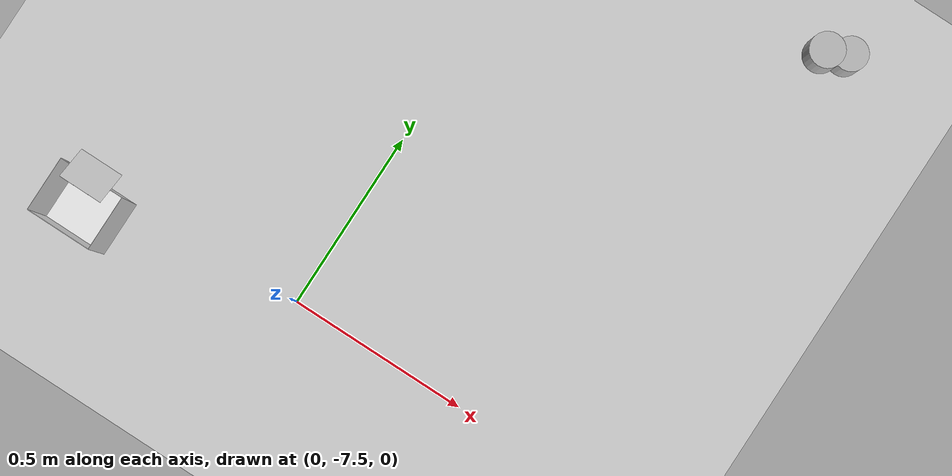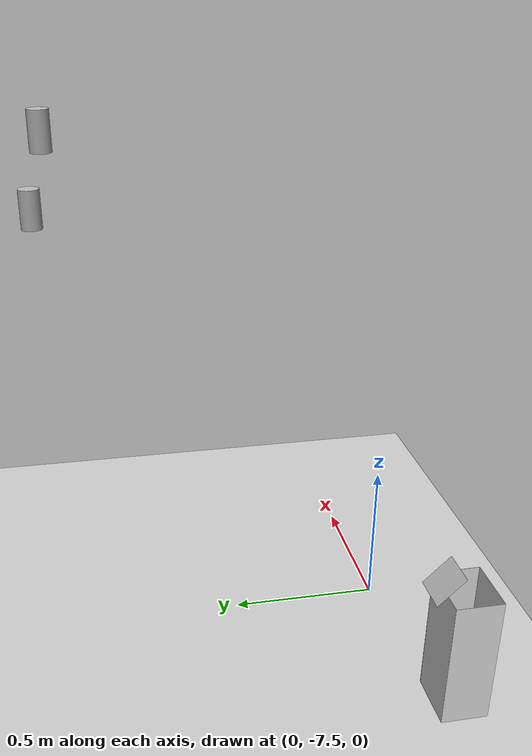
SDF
<sdf version="1.6">
 <world name="default">
  <model name="ground_plane">
   <static>1</static>
   <link name="link">
    <collision name="collision">
     <geometry><plane><normal>0 0 1</normal><size>100 100</size></plane></geometry>
     <surface><friction><ode><mu>100</mu><mu2>50</mu2></ode></friction></surface>
    </collision>
    <visual name="visual">
     <cast_shadows>0</cast_shadows>
     <geometry><plane><normal>0 0 1</normal><size>100 100</size></plane></geometry>
     <material>
      <script><uri>file://media/materials/scripts/gazebo.material</uri><name>Gazebo/Grey</name></script>
     </material>
    </visual>
   </link>
  </model>
  <model name="charge_station">
   <link name="link">
    <inertial>
     <pose>0.034 0 0.04 1.57 -0 0</pose>
     <mass>0.3</mass>
     <inertia><ixx>0.00058</ixx><ixy>0</ixy><ixz>0</ixz><iyy>0.00058</iyy><iyz>0</iyz><izz>0.00019</izz></inertia>
    </inertial>
    <visual name="marker_0015">
     <pose>0.08 0 0.475 0 -0.785 3.1415</pose>
     <geometry><box><size>0.12 0.12 0.0001</size></box></geometry>
     <material>
      <script>
       <uri>model://marker/0015/scripts</uri>
       <uri>model://marker/0015/textures</uri>
       <name>Marker/0015_80</name>
      </script>
     </material>
    </visual>
    <visual name="box_front">
     <pose>0.076 0 0.22 0 -0 0</pose>
     <geometry><box><size>0.001 0.18 0.44</size></box></geometry>
     <material>
      <script><uri>model://base_materials/color/scripts</uri><name>hsr_color/white_transparency1</name></script>
     </material>
    </visual>
    <collision name="collision_box_front">
     <pose>0.076 0 0.22 0 -0 0</pose>
     <geometry><box><size>0.001 0.18 0.44</size></box></geometry>
     <surface>
      <bounce><restitution_coefficient>0.2</restitution_coefficient><threshold>0</threshold></bounce>
      <contact><ode><max_vel>10</max_vel></ode></contact>
     </surface>
    </collision>
    <visual name="box_back">
     <pose>-0.076 0 0.22 0 -0 0</pose>
     <geometry><box><size>0.001 0.18 0.44</size></box></geometry>
     <material>
      <script><uri>model://base_materials/color/scripts</uri><name>hsr_color/white_transparency1</name></script>
     </material>
    </visual>
    <collision name="collision_box_back">
     <pose>-0.076 0 0.22 0 -0 0</pose>
     <geometry><box><size>0.001 0.18 0.44</size></box></geometry>
     <surface>
      <bounce><restitution_coefficient>0.2</restitution_coefficient><threshold>0</threshold></bounce>
      <contact><ode><max_vel>10</max_vel></ode></contact>
     </surface>
    </collision>
    <visual name="box_right">
     <pose>0 0.09 0.22 0 -0 0</pose>
     <geometry><box><size>0.153 0.001 0.44</size></box></geometry>
     <material>
      <script><uri>model://base_materials/color/scripts</uri><name>hsr_color/white_transparency1</name></script>
     </material>
    </visual>
    <collision name="collision_box_right">
     <pose>0 0.09 0.22 0 -0 0</pose>
     <geometry><box><size>0.153 0.001 0.44</size></box></geometry>
     <surface>
      <bounce><restitution_coefficient>0.2</restitution_coefficient><threshold>0</threshold></bounce>
      <contact><ode><max_vel>10</max_vel></ode></contact>
     </surface>
    </collision>
    <visual name="box_left">
     <pose>0 -0.09 0.22 0 -0 0</pose>
     <geometry><box><size>0.153 0.001 0.44</size></box></geometry>
     <material>
      <script><uri>model://base_materials/color/scripts</uri><name>hsr_color/white_transparency1</name></script>
     </material>
    </visual>
    <collision name="collision_box_left">
     <pose>0 -0.09 0.22 0 -0 0</pose>
     <geometry><box><size>0.153 0.001 0.44</size></box></geometry>
     <surface>
      <bounce><restitution_coefficient>0.2</restitution_coefficient><threshold>0</threshold></bounce>
      <contact><ode><max_vel>10</max_vel></ode></contact>
     </surface>
    </collision>
    <visual name="box_bottom">
     <pose>0 0 0.001 0 -0 0</pose>
     <geometry><box><size>0.151 0.18 0.002</size></box></geometry>
     <material>
      <script><uri>model://base_materials/color/scripts</uri><name>hsr_color/white_transparency1</name></script>
     </material>
    </visual>
    <collision name="collision_box_bottom">
     <pose>0 0 0.001 0 -0 0</pose>
     <geometry><box><size>0.151 0.18 0.002</size></box></geometry>
     <surface>
      <bounce><restitution_coefficient>0.2</restitution_coefficient><threshold>0</threshold></bounce>
      <contact><ode><max_vel>10</max_vel></ode></contact>
     </surface>
    </collision>
    <velocity_decay><linear>0</linear><angular>0</angular></velocity_decay>
   </link>
   <static>0</static>
   <pose>-0.576039 -7.59374 -7e-06 -0 9.7e-05 1.5703</pose>
  </model>
  <model name="sprite">
   <static>0</static>
   <link name="link">
    <inertial>
     <mass>0.25</mass>
     <inertia><ixx>0</ixx><ixy>0</ixy><ixz>0</ixz><iyy>0</iyy><iyz>0</iyz><izz>0</izz></inertia>
    </inertial>
    <collision name="collision">
     <pose>0 0 0.075 -3.14159 -0 0</pose>
     <geometry><cylinder><radius>0.04</radius><length>0.15</length></cylinder></geometry>
    </collision>
    <visual name="visual">
     <pose>0 0 0.075 -3.14159 -0 0</pose>
     <geometry><cylinder><radius>0.04</radius><length>0.15</length></cylinder></geometry>
     <material>
      <script>
       <uri>model://sprite/material/scripts</uri>
       <uri>model://sprite/material/textures</uri>
       <name>Custom/sprite</name>
      </script>
     </material>
    </visual>
    <velocity_decay><linear>0</linear><angular>0</angular></velocity_decay>
   </link>
   <pose>0.779768 -6.36168 1.22901 5e-06 0.000185 0</pose>
  </model>
  <model name="cocacola">
   <static>0</static>
   <link name="link">
    <inertial>
     <mass>0.25</mass>
     <inertia><ixx>0</ixx><ixy>0</ixy><ixz>0</ixz><iyy>0</iyy><iyz>0</iyz><izz>0</izz></inertia>
    </inertial>
    <collision name="collision">
     <pose>0 0 0.075 -3.14159 -0 0</pose>
     <geometry><cylinder><radius>0.04</radius><length>0.15</length></cylinder></geometry>
    </collision>
    <visual name="visual">
     <pose>0 0 0.075 -3.14159 -0 0</pose>
     <geometry><cylinder><radius>0.04</radius><length>0.15</length></cylinder></geometry>
     <material>
      <script>
       <uri>model://cocacola/material/scripts</uri>
       <uri>model://cocacola/material/textures</uri>
       <name>Custom/cocacola</name>
      </script>
     </material>
    </visual>
    <velocity_decay><linear>0</linear><angular>0</angular></velocity_decay>
   </link>
   <pose>0.717125 -6.4215 1.519 0.000146 6.2e-05 -1.3e-05</pose>
  </model>
 </world>
</sdf>
